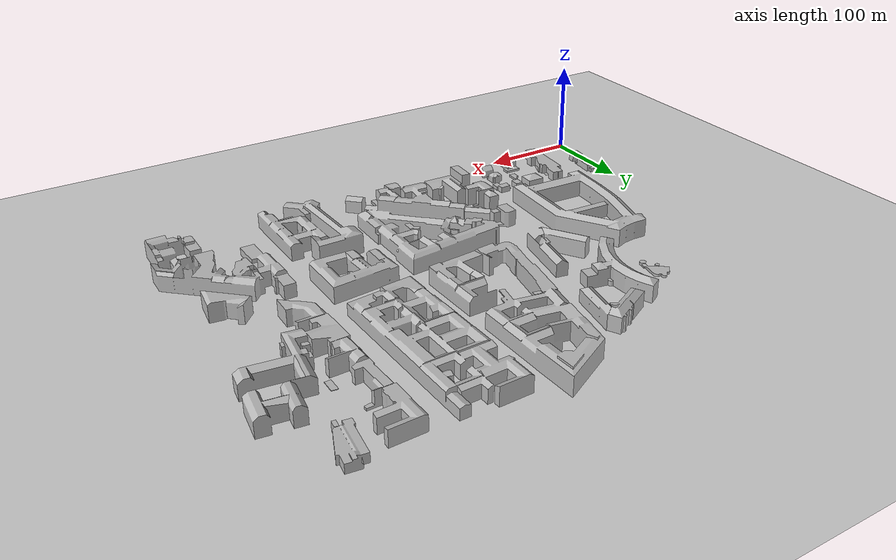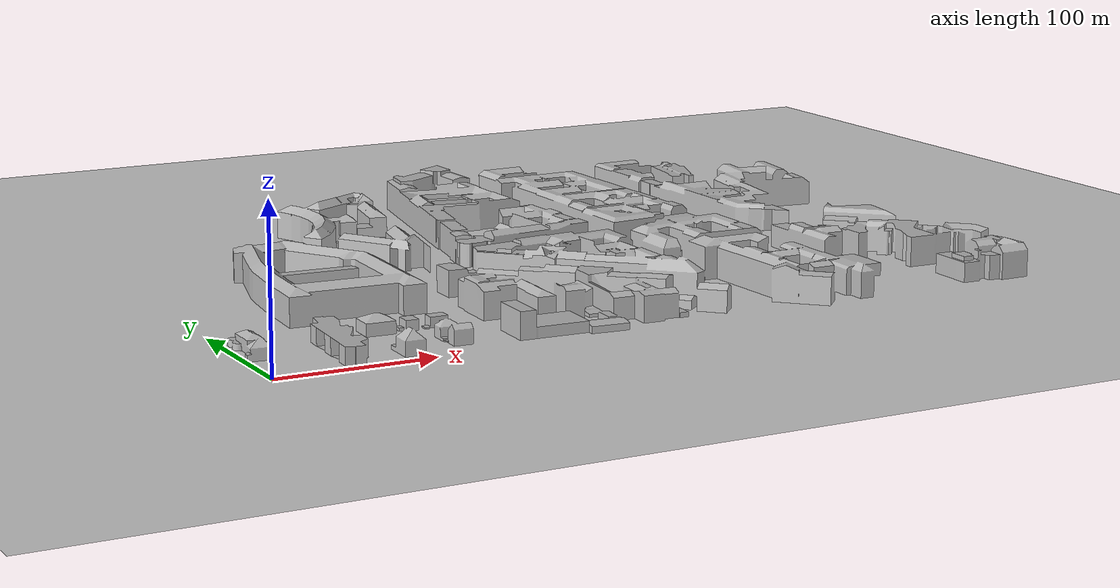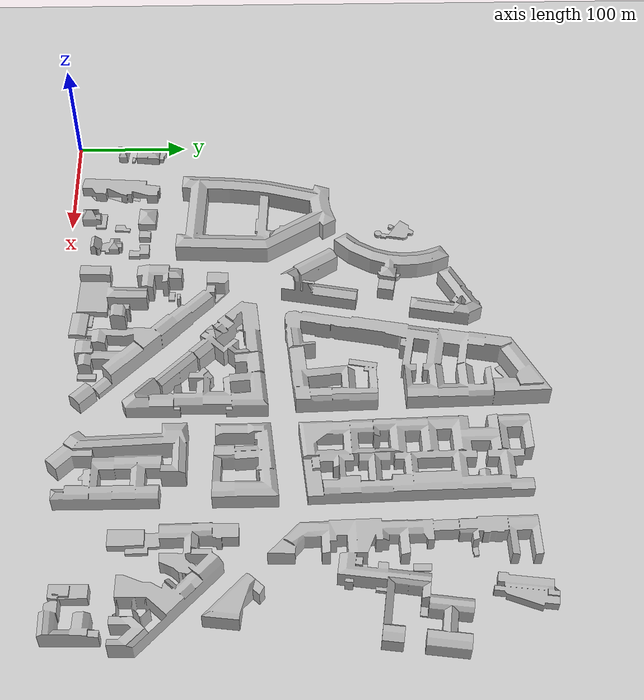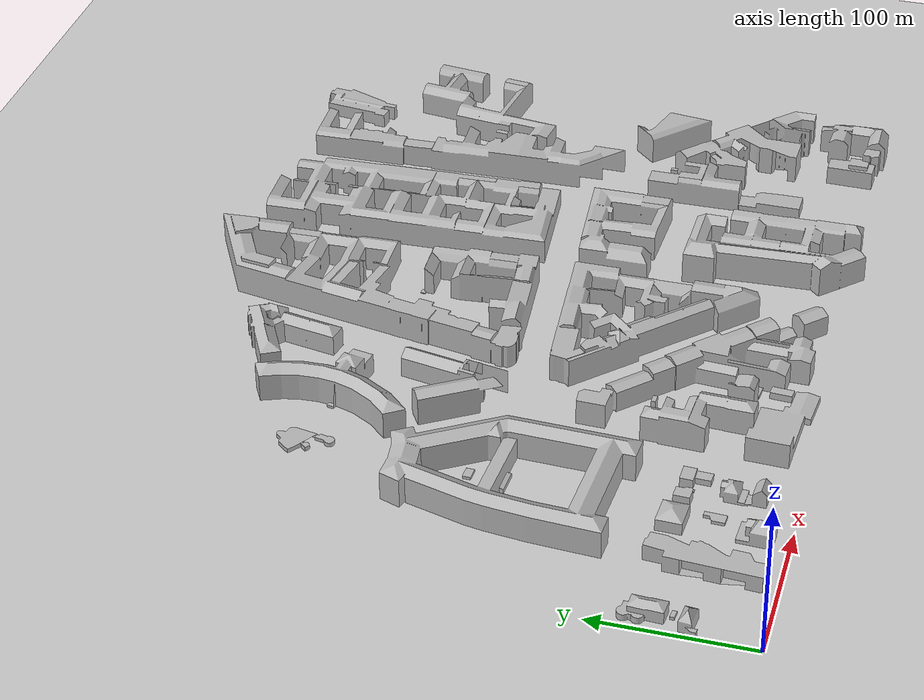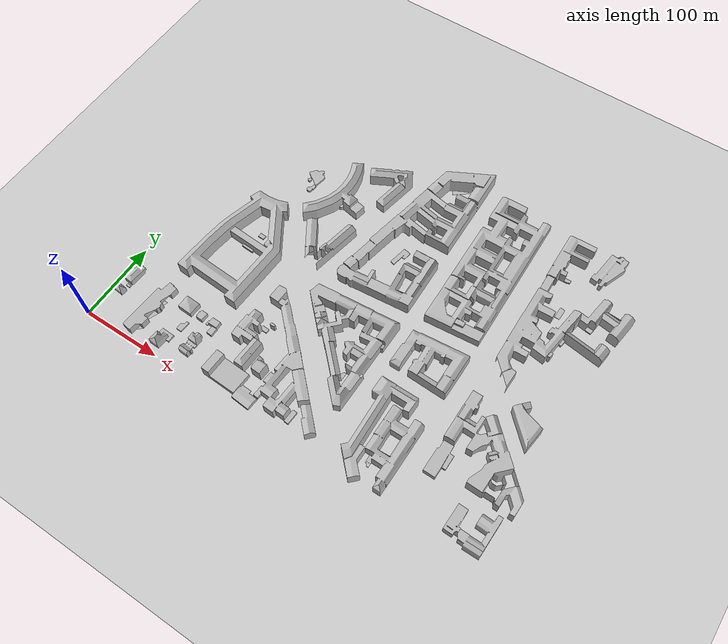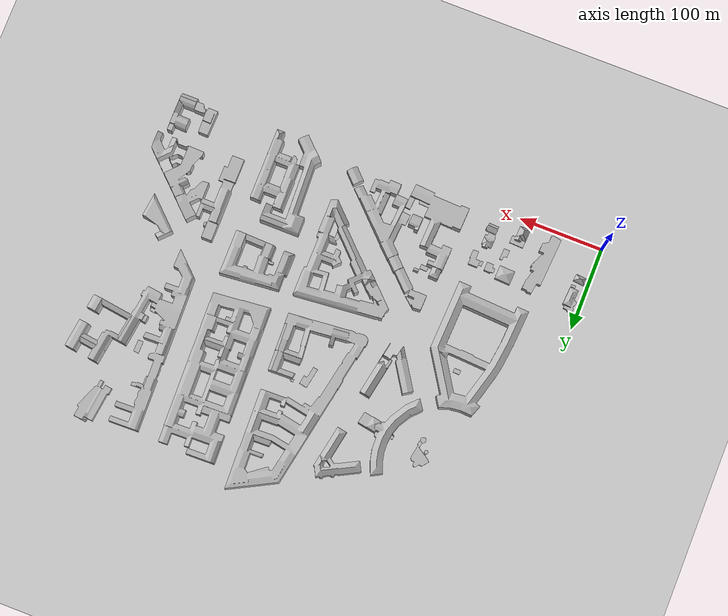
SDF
<?xml version="1.0"?>
<sdf version="1.4">
 <world name="default">
  <include>
      <uri>model://ground_plane</uri>
    </include>
    <include>
      <uri>model://sun</uri>
    </include>
    <model name="my_mesh">
      <pose>0 0 -7.5 0 0 0</pose>
      <static>true</static>
      <link name="body">
        <visual name="visual">
        <pose>0 0 0 1.57 0 0</pose>
          <geometry>
            <mesh>
            <uri>file://msh5816.obj</uri>
            </mesh>
          </geometry>
        </visual>
      </link>
    </model>
  </world>
</sdf>
